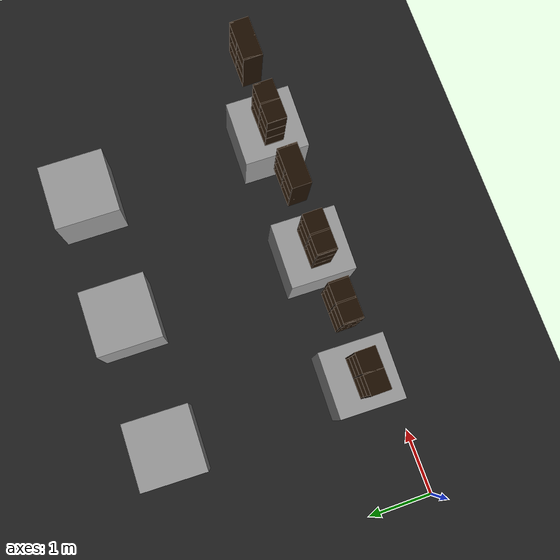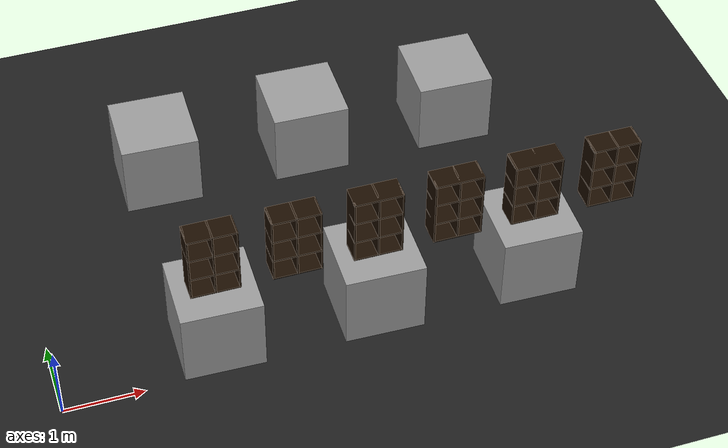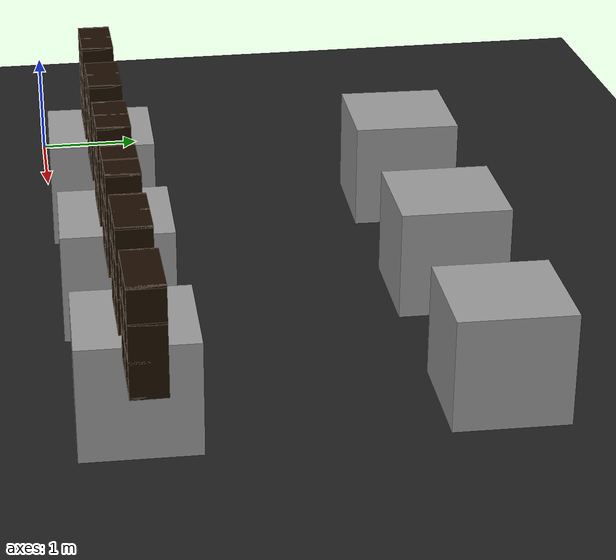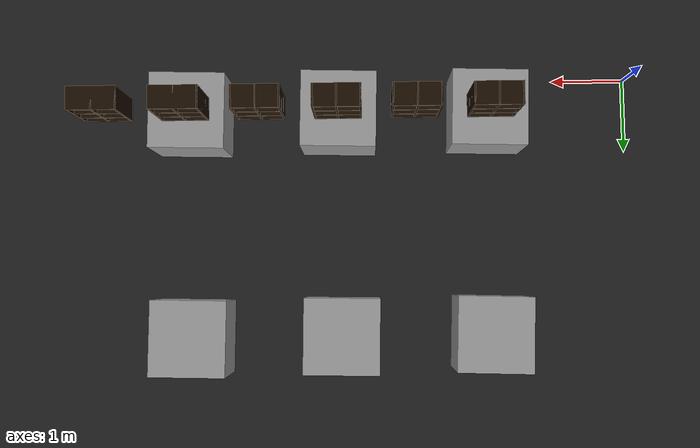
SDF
<sdf version="1.7">
 <world name="default">
  <model name="ground_plane">
   <static>1</static>
   <link name="link">
    <collision name="collision">
     <geometry><plane><normal>0 0 1</normal><size>100 100</size></plane></geometry>
     <surface><friction><ode><mu>100</mu><mu2>50</mu2></ode></friction></surface>
    </collision>
    <visual name="visual">
     <cast_shadows>0</cast_shadows>
     <geometry><plane><normal>0 0 1</normal><size>100 100</size></plane></geometry>
     <material>
      <script><uri>file://media/materials/scripts/gazebo.material</uri><name>Gazebo/BlackTransparent</name></script>
     </material>
    </visual>
   </link>
  </model>
  <model name="unit_box_13">
   <pose>1.97869 3.498 0.5 0 0 -0.03306</pose>
   <link name="link">
    <inertial>
     <mass>1</mass>
     <inertia>
      <ixx>0.166667</ixx>
      <ixy>0</ixy>
      <ixz>0</ixz>
      <iyy>0.166667</iyy>
      <iyz>0</iyz>
      <izz>0.166667</izz>
     </inertia>
    </inertial>
    <collision name="collision"><geometry><box><size>1 1 1</size></box></geometry></collision>
    <visual name="visual">
     <geometry><box><size>1 1 1</size></box></geometry>
     <material>
      <script><name>Gazebo/Grey</name><uri>file://media/materials/scripts/gazebo.material</uri></script>
     </material>
    </visual>
   </link>
  </model>
  <model name="unit_box_14">
   <pose>3.98761 3.49791 0.5 0 0 -0.021261</pose>
   <link name="link">
    <inertial>
     <mass>1</mass>
     <inertia>
      <ixx>0.166667</ixx>
      <ixy>0</ixy>
      <ixz>0</ixz>
      <iyy>0.166667</iyy>
      <iyz>0</iyz>
      <izz>0.166667</izz>
     </inertia>
    </inertial>
    <collision name="collision"><geometry><box><size>1 1 1</size></box></geometry></collision>
    <visual name="visual">
     <geometry><box><size>1 1 1</size></box></geometry>
     <material>
      <script><name>Gazebo/Grey</name><uri>file://media/materials/scripts/gazebo.material</uri></script>
     </material>
    </visual>
   </link>
  </model>
  <model name="unit_box_15">
   <pose>5.99411 3.49961 0.5 0 -0 -0.027445</pose>
   <link name="link">
    <inertial>
     <mass>1</mass>
     <inertia>
      <ixx>0.166667</ixx>
      <ixy>0</ixy>
      <ixz>0</ixz>
      <iyy>0.166667</iyy>
      <iyz>0</iyz>
      <izz>0.166667</izz>
     </inertia>
    </inertial>
    <collision name="collision"><geometry><box><size>1 1 1</size></box></geometry></collision>
    <visual name="visual">
     <geometry><box><size>1 1 1</size></box></geometry>
     <material>
      <script><name>Gazebo/Grey</name><uri>file://media/materials/scripts/gazebo.material</uri></script>
     </material>
    </visual>
   </link>
  </model>
  <model name="unit_box_19">
   <pose>1.997 0.508723 0.5 0 -0 -0.025928</pose>
   <link name="link">
    <inertial>
     <mass>1</mass>
     <inertia>
      <ixx>0.166667</ixx>
      <ixy>0</ixy>
      <ixz>0</ixz>
      <iyy>0.166667</iyy>
      <iyz>0</iyz>
      <izz>0.166667</izz>
     </inertia>
    </inertial>
    <collision name="collision"><geometry><box><size>1 1 1</size></box></geometry></collision>
    <visual name="visual">
     <geometry><box><size>1 1 1</size></box></geometry>
     <material>
      <script><name>Gazebo/Grey</name><uri>file://media/materials/scripts/gazebo.material</uri></script>
     </material>
    </visual>
   </link>
  </model>
  <model name="unit_box_20">
   <pose>3.99851 0.502361 0.5 0 0 -0.025427</pose>
   <link name="link">
    <inertial>
     <mass>1</mass>
     <inertia>
      <ixx>0.166667</ixx>
      <ixy>0</ixy>
      <ixz>0</ixz>
      <iyy>0.166667</iyy>
      <iyz>0</iyz>
      <izz>0.166667</izz>
     </inertia>
    </inertial>
    <collision name="collision"><geometry><box><size>1 1 1</size></box></geometry></collision>
    <visual name="visual">
     <geometry><box><size>1 1 1</size></box></geometry>
     <material>
      <script><name>Gazebo/Grey</name><uri>file://media/materials/scripts/gazebo.material</uri></script>
     </material>
    </visual>
   </link>
  </model>
  <model name="unit_box_21">
   <pose>5.99967 0.500062 0.5 0 0 -0.025536</pose>
   <link name="link">
    <inertial>
     <mass>1</mass>
     <inertia>
      <ixx>0.166667</ixx>
      <ixy>0</ixy>
      <ixz>0</ixz>
      <iyy>0.166667</iyy>
      <iyz>0</iyz>
      <izz>0.166667</izz>
     </inertia>
    </inertial>
    <collision name="collision"><geometry><box><size>1 1 1</size></box></geometry></collision>
    <visual name="visual">
     <geometry><box><size>1 1 1</size></box></geometry>
     <material>
      <script><name>Gazebo/Grey</name><uri>file://media/materials/scripts/gazebo.material</uri></script>
     </material>
    </visual>
   </link>
  </model>
  <model name="6_Cube_StorageE_clone_37">
   <link name="Wall_0">
    <pose>0 0 0.01 0 -0 0</pose>
    <inertial>
     <mass>1.6201</mass>
     <inertia><ixx>0.0119</ixx><iyy>0.0631</iyy><izz>0.0513</izz><ixy>0</ixy><ixz>0</ixz><iyz>0</iyz></inertia>
    </inertial>
    <collision name="Wall_0_Collision"><geometry><box><size>0.616 0.296 0.02</size></box></geometry></collision>
    <visual name="Wall_0_Visual">
     <geometry><box><size>0.616 0.296 0.02</size></box></geometry>
     <material>
      <script><uri>file://media/materials/scripts/gazebo.material</uri><name>Gazebo/Grey</name></script>
      <ambient>0.105882 0.0509804 0 1</ambient>
     </material>
    </visual>
   </link>
   <joint name="0_2" type="fixed">
    <pose>-0.308 0 0 0 -0 0</pose>
    <parent>Wall_2</parent>
    <child>Wall_0</child>
    <axis><xyz>1 0 0</xyz><limit><lower>-1e+16</lower><upper>1e+16</upper></limit></axis>
   </joint>
   <joint name="0_12" type="fixed">
    <parent>Wall_12</parent>
    <child>Wall_0</child>
    <axis><xyz>0 0 1</xyz><limit><lower>-1e+16</lower><upper>1e+16</upper></limit></axis>
   </joint>
   <joint name="0_4" type="fixed">
    <pose>0.308 0 0 0 -0 0</pose>
    <parent>Wall_4</parent>
    <child>Wall_0</child>
    <axis><xyz>1 0 0</xyz><limit><lower>-1e+16</lower><upper>1e+16</upper></limit></axis>
   </joint>
   <link name="Wall_10">
    <pose>0 0 0.61 0 -0 0</pose>
    <inertial>
     <mass>1.6201</mass>
     <inertia><ixx>0.0119</ixx><iyy>0.0631</iyy><izz>0.0513</izz><ixy>0</ixy><ixz>0</ixz><iyz>0</iyz></inertia>
    </inertial>
    <collision name="Wall_10_Collision"><geometry><box><size>0.616 0.296 0.02</size></box></geometry></collision>
    <visual name="Wall_10_Visual">
     <geometry><box><size>0.616 0.296 0.02</size></box></geometry>
     <material>
      <script><uri>file://media/materials/scripts/gazebo.material</uri><name>Gazebo/Grey</name></script>
      <ambient>0.105882 0.0509804 0 1</ambient>
     </material>
    </visual>
   </link>
   <joint name="10_2" type="fixed">
    <pose>-0.308 0 0 0 -0 0</pose>
    <parent>Wall_2</parent>
    <child>Wall_10</child>
    <axis><xyz>1 0 0</xyz><limit><lower>-1e+16</lower><upper>1e+16</upper></limit></axis>
   </joint>
   <joint name="10_12" type="fixed">
    <parent>Wall_12</parent>
    <child>Wall_10</child>
    <axis><xyz>0 0 1</xyz><limit><lower>-1e+16</lower><upper>1e+16</upper></limit></axis>
   </joint>
   <joint name="10_4" type="fixed">
    <pose>0.308 0 0 0 -0 0</pose>
    <parent>Wall_4</parent>
    <child>Wall_10</child>
    <axis><xyz>1 0 0</xyz><limit><lower>-1e+16</lower><upper>1e+16</upper></limit></axis>
   </joint>
   <link name="Wall_12">
    <pose>0 0 0.4575 0 -0 0</pose>
    <inertial>
     <mass>2.4065</mass>
     <inertia><ixx>0.0177</ixx><iyy>0.1855</iyy><izz>0.168</izz><ixy>0</ixy><ixz>0</ixz><iyz>0</iyz></inertia>
    </inertial>
    <collision name="Wall_12_Collision"><geometry><box><size>0.02 0.296 0.915</size></box></geometry></collision>
    <visual name="Wall_12_Visual">
     <geometry><box><size>0.02 0.296 0.915</size></box></geometry>
     <material>
      <script><uri>file://media/materials/scripts/gazebo.material</uri><name>Gazebo/Grey</name></script>
      <ambient>0.105882 0.0509804 0 1</ambient>
     </material>
    </visual>
   </link>
   <link name="Wall_2">
    <pose>-0.298 0 0.4575 0 -0 0</pose>
    <inertial>
     <mass>2.4065</mass>
     <inertia><ixx>0.0177</ixx><iyy>0.1855</iyy><izz>0.168</izz><ixy>0</ixy><ixz>0</ixz><iyz>0</iyz></inertia>
    </inertial>
    <collision name="Wall_2_Collision"><geometry><box><size>0.02 0.296 0.915</size></box></geometry></collision>
    <visual name="Wall_2_Visual">
     <geometry><box><size>0.02 0.296 0.915</size></box></geometry>
     <material>
      <script><uri>file://media/materials/scripts/gazebo.material</uri><name>Gazebo/Grey</name></script>
      <ambient>0.105882 0.0509804 0 1</ambient>
     </material>
    </visual>
   </link>
   <link name="Wall_4">
    <pose>0.298 0 0.4575 0 -0 0</pose>
    <inertial>
     <mass>2.4065</mass>
     <inertia><ixx>0.0177</ixx><iyy>0.1855</iyy><izz>0.168</izz><ixy>0</ixy><ixz>0</ixz><iyz>0</iyz></inertia>
    </inertial>
    <collision name="Wall_4_Collision"><geometry><box><size>0.02 0.296 0.915</size></box></geometry></collision>
    <visual name="Wall_4_Visual">
     <geometry><box><size>0.02 0.296 0.915</size></box></geometry>
     <material>
      <script><uri>file://media/materials/scripts/gazebo.material</uri><name>Gazebo/Grey</name></script>
      <ambient>0.105882 0.0509804 0 1</ambient>
     </material>
    </visual>
   </link>
   <link name="Wall_6">
    <pose>0 0 0.905 0 -0 0</pose>
    <inertial>
     <mass>1.6201</mass>
     <inertia><ixx>0.0119</ixx><iyy>0.0631</iyy><izz>0.0513</izz><ixy>0</ixy><ixz>0</ixz><iyz>0</iyz></inertia>
    </inertial>
    <collision name="Wall_6_Collision"><geometry><box><size>0.616 0.296 0.02</size></box></geometry></collision>
    <visual name="Wall_6_Visual">
     <geometry><box><size>0.616 0.296 0.02</size></box></geometry>
     <material>
      <script><uri>file://media/materials/scripts/gazebo.material</uri><name>Gazebo/Grey</name></script>
      <ambient>0.105882 0.0509804 0 1</ambient>
     </material>
    </visual>
   </link>
   <joint name="6_2" type="fixed">
    <pose>-0.308 0 0 0 -0 0</pose>
    <parent>Wall_2</parent>
    <child>Wall_6</child>
    <axis><xyz>2 0 0</xyz><limit><lower>-1e+16</lower><upper>1e+16</upper></limit></axis>
   </joint>
   <joint name="6_12" type="fixed">
    <parent>Wall_12</parent>
    <child>Wall_6</child>
    <axis><xyz>0 0 1</xyz><limit><lower>-1e+16</lower><upper>1e+16</upper></limit></axis>
   </joint>
   <joint name="6_4" type="fixed">
    <pose>0.308 0 0 0 -0 0</pose>
    <parent>Wall_4</parent>
    <child>Wall_6</child>
    <axis><xyz>1 0 0</xyz><limit><lower>-1e+16</lower><upper>1e+16</upper></limit></axis>
   </joint>
   <link name="Wall_8">
    <pose>0 0 0.305 0 -0 0</pose>
    <inertial>
     <mass>1.6201</mass>
     <inertia><ixx>0.0119</ixx><iyy>0.0631</iyy><izz>0.0513</izz><ixy>0</ixy><ixz>0</ixz><iyz>0</iyz></inertia>
    </inertial>
    <collision name="Wall_8_Collision"><geometry><box><size>0.616 0.296 0.02</size></box></geometry></collision>
    <visual name="Wall_8_Visual">
     <geometry><box><size>0.616 0.296 0.02</size></box></geometry>
     <material>
      <script><uri>file://media/materials/scripts/gazebo.material</uri><name>Gazebo/Grey</name></script>
      <ambient>0.105882 0.0509804 0 1</ambient>
     </material>
    </visual>
   </link>
   <joint name="8_2" type="fixed">
    <pose>-0.308 0 0 0 -0 0</pose>
    <parent>Wall_2</parent>
    <child>Wall_8</child>
    <axis><xyz>1 0 0</xyz><limit><lower>-1e+16</lower><upper>1e+16</upper></limit></axis>
   </joint>
   <joint name="8_12" type="fixed">
    <parent>Wall_12</parent>
    <child>Wall_8</child>
    <axis><xyz>0 0 1</xyz><limit><lower>-1e+16</lower><upper>1e+16</upper></limit></axis>
   </joint>
   <joint name="8_4" type="fixed">
    <pose>0.308 0 0 0 -0 0</pose>
    <parent>Wall_4</parent>
    <child>Wall_8</child>
    <axis><xyz>1 0 0</xyz><limit><lower>-1e+16</lower><upper>1e+16</upper></limit></axis>
   </joint>
   <static>1</static>
   <pose>2 0.5 1.01 0 -0 0</pose>
  </model>
  <model name="6_Cube_StorageE_clone_38">
   <link name="Wall_0">
    <pose>0 0 0.01 0 -0 0</pose>
    <inertial>
     <mass>1.6201</mass>
     <inertia><ixx>0.0119</ixx><iyy>0.0631</iyy><izz>0.0513</izz><ixy>0</ixy><ixz>0</ixz><iyz>0</iyz></inertia>
    </inertial>
    <collision name="Wall_0_Collision"><geometry><box><size>0.616 0.296 0.02</size></box></geometry></collision>
    <visual name="Wall_0_Visual">
     <geometry><box><size>0.616 0.296 0.02</size></box></geometry>
     <material>
      <script><uri>file://media/materials/scripts/gazebo.material</uri><name>Gazebo/Grey</name></script>
      <ambient>0.105882 0.0509804 0 1</ambient>
     </material>
    </visual>
   </link>
   <joint name="0_2" type="fixed">
    <pose>-0.308 0 0 0 -0 0</pose>
    <parent>Wall_2</parent>
    <child>Wall_0</child>
    <axis><xyz>1 0 0</xyz><limit><lower>-1e+16</lower><upper>1e+16</upper></limit></axis>
   </joint>
   <joint name="0_12" type="fixed">
    <parent>Wall_12</parent>
    <child>Wall_0</child>
    <axis><xyz>0 0 1</xyz><limit><lower>-1e+16</lower><upper>1e+16</upper></limit></axis>
   </joint>
   <joint name="0_4" type="fixed">
    <pose>0.308 0 0 0 -0 0</pose>
    <parent>Wall_4</parent>
    <child>Wall_0</child>
    <axis><xyz>1 0 0</xyz><limit><lower>-1e+16</lower><upper>1e+16</upper></limit></axis>
   </joint>
   <link name="Wall_10">
    <pose>0 0 0.61 0 -0 0</pose>
    <inertial>
     <mass>1.6201</mass>
     <inertia><ixx>0.0119</ixx><iyy>0.0631</iyy><izz>0.0513</izz><ixy>0</ixy><ixz>0</ixz><iyz>0</iyz></inertia>
    </inertial>
    <collision name="Wall_10_Collision"><geometry><box><size>0.616 0.296 0.02</size></box></geometry></collision>
    <visual name="Wall_10_Visual">
     <geometry><box><size>0.616 0.296 0.02</size></box></geometry>
     <material>
      <script><uri>file://media/materials/scripts/gazebo.material</uri><name>Gazebo/Grey</name></script>
      <ambient>0.105882 0.0509804 0 1</ambient>
     </material>
    </visual>
   </link>
   <joint name="10_2" type="fixed">
    <pose>-0.308 0 0 0 -0 0</pose>
    <parent>Wall_2</parent>
    <child>Wall_10</child>
    <axis><xyz>1 0 0</xyz><limit><lower>-1e+16</lower><upper>1e+16</upper></limit></axis>
   </joint>
   <joint name="10_12" type="fixed">
    <parent>Wall_12</parent>
    <child>Wall_10</child>
    <axis><xyz>0 0 1</xyz><limit><lower>-1e+16</lower><upper>1e+16</upper></limit></axis>
   </joint>
   <joint name="10_4" type="fixed">
    <pose>0.308 0 0 0 -0 0</pose>
    <parent>Wall_4</parent>
    <child>Wall_10</child>
    <axis><xyz>1 0 0</xyz><limit><lower>-1e+16</lower><upper>1e+16</upper></limit></axis>
   </joint>
   <link name="Wall_12">
    <pose>0 0 0.4575 0 -0 0</pose>
    <inertial>
     <mass>2.4065</mass>
     <inertia><ixx>0.0177</ixx><iyy>0.1855</iyy><izz>0.168</izz><ixy>0</ixy><ixz>0</ixz><iyz>0</iyz></inertia>
    </inertial>
    <collision name="Wall_12_Collision"><geometry><box><size>0.02 0.296 0.915</size></box></geometry></collision>
    <visual name="Wall_12_Visual">
     <geometry><box><size>0.02 0.296 0.915</size></box></geometry>
     <material>
      <script><uri>file://media/materials/scripts/gazebo.material</uri><name>Gazebo/Grey</name></script>
      <ambient>0.105882 0.0509804 0 1</ambient>
     </material>
    </visual>
   </link>
   <link name="Wall_2">
    <pose>-0.298 0 0.4575 0 -0 0</pose>
    <inertial>
     <mass>2.4065</mass>
     <inertia><ixx>0.0177</ixx><iyy>0.1855</iyy><izz>0.168</izz><ixy>0</ixy><ixz>0</ixz><iyz>0</iyz></inertia>
    </inertial>
    <collision name="Wall_2_Collision"><geometry><box><size>0.02 0.296 0.915</size></box></geometry></collision>
    <visual name="Wall_2_Visual">
     <geometry><box><size>0.02 0.296 0.915</size></box></geometry>
     <material>
      <script><uri>file://media/materials/scripts/gazebo.material</uri><name>Gazebo/Grey</name></script>
      <ambient>0.105882 0.0509804 0 1</ambient>
     </material>
    </visual>
   </link>
   <link name="Wall_4">
    <pose>0.298 0 0.4575 0 -0 0</pose>
    <inertial>
     <mass>2.4065</mass>
     <inertia><ixx>0.0177</ixx><iyy>0.1855</iyy><izz>0.168</izz><ixy>0</ixy><ixz>0</ixz><iyz>0</iyz></inertia>
    </inertial>
    <collision name="Wall_4_Collision"><geometry><box><size>0.02 0.296 0.915</size></box></geometry></collision>
    <visual name="Wall_4_Visual">
     <geometry><box><size>0.02 0.296 0.915</size></box></geometry>
     <material>
      <script><uri>file://media/materials/scripts/gazebo.material</uri><name>Gazebo/Grey</name></script>
      <ambient>0.105882 0.0509804 0 1</ambient>
     </material>
    </visual>
   </link>
   <link name="Wall_6">
    <pose>0 0 0.905 0 -0 0</pose>
    <inertial>
     <mass>1.6201</mass>
     <inertia><ixx>0.0119</ixx><iyy>0.0631</iyy><izz>0.0513</izz><ixy>0</ixy><ixz>0</ixz><iyz>0</iyz></inertia>
    </inertial>
    <collision name="Wall_6_Collision"><geometry><box><size>0.616 0.296 0.02</size></box></geometry></collision>
    <visual name="Wall_6_Visual">
     <geometry><box><size>0.616 0.296 0.02</size></box></geometry>
     <material>
      <script><uri>file://media/materials/scripts/gazebo.material</uri><name>Gazebo/Grey</name></script>
      <ambient>0.105882 0.0509804 0 1</ambient>
     </material>
    </visual>
   </link>
   <joint name="6_2" type="fixed">
    <pose>-0.308 0 0 0 -0 0</pose>
    <parent>Wall_2</parent>
    <child>Wall_6</child>
    <axis><xyz>2 0 0</xyz><limit><lower>-1e+16</lower><upper>1e+16</upper></limit></axis>
   </joint>
   <joint name="6_12" type="fixed">
    <parent>Wall_12</parent>
    <child>Wall_6</child>
    <axis><xyz>0 0 1</xyz><limit><lower>-1e+16</lower><upper>1e+16</upper></limit></axis>
   </joint>
   <joint name="6_4" type="fixed">
    <pose>0.308 0 0 0 -0 0</pose>
    <parent>Wall_4</parent>
    <child>Wall_6</child>
    <axis><xyz>1 0 0</xyz><limit><lower>-1e+16</lower><upper>1e+16</upper></limit></axis>
   </joint>
   <link name="Wall_8">
    <pose>0 0 0.305 0 -0 0</pose>
    <inertial>
     <mass>1.6201</mass>
     <inertia><ixx>0.0119</ixx><iyy>0.0631</iyy><izz>0.0513</izz><ixy>0</ixy><ixz>0</ixz><iyz>0</iyz></inertia>
    </inertial>
    <collision name="Wall_8_Collision"><geometry><box><size>0.616 0.296 0.02</size></box></geometry></collision>
    <visual name="Wall_8_Visual">
     <geometry><box><size>0.616 0.296 0.02</size></box></geometry>
     <material>
      <script><uri>file://media/materials/scripts/gazebo.material</uri><name>Gazebo/Grey</name></script>
      <ambient>0.105882 0.0509804 0 1</ambient>
     </material>
    </visual>
   </link>
   <joint name="8_2" type="fixed">
    <pose>-0.308 0 0 0 -0 0</pose>
    <parent>Wall_2</parent>
    <child>Wall_8</child>
    <axis><xyz>1 0 0</xyz><limit><lower>-1e+16</lower><upper>1e+16</upper></limit></axis>
   </joint>
   <joint name="8_12" type="fixed">
    <parent>Wall_12</parent>
    <child>Wall_8</child>
    <axis><xyz>0 0 1</xyz><limit><lower>-1e+16</lower><upper>1e+16</upper></limit></axis>
   </joint>
   <joint name="8_4" type="fixed">
    <pose>0.308 0 0 0 -0 0</pose>
    <parent>Wall_4</parent>
    <child>Wall_8</child>
    <axis><xyz>1 0 0</xyz><limit><lower>-1e+16</lower><upper>1e+16</upper></limit></axis>
   </joint>
   <static>1</static>
   <pose>3 0.5 1.01 0 -0 0</pose>
  </model>
  <model name="6_Cube_StorageE_clone_39">
   <link name="Wall_0">
    <pose>0 0 0.01 0 -0 0</pose>
    <inertial>
     <mass>1.6201</mass>
     <inertia><ixx>0.0119</ixx><iyy>0.0631</iyy><izz>0.0513</izz><ixy>0</ixy><ixz>0</ixz><iyz>0</iyz></inertia>
    </inertial>
    <collision name="Wall_0_Collision"><geometry><box><size>0.616 0.296 0.02</size></box></geometry></collision>
    <visual name="Wall_0_Visual">
     <geometry><box><size>0.616 0.296 0.02</size></box></geometry>
     <material>
      <script><uri>file://media/materials/scripts/gazebo.material</uri><name>Gazebo/Grey</name></script>
      <ambient>0.105882 0.0509804 0 1</ambient>
     </material>
    </visual>
   </link>
   <joint name="0_2" type="fixed">
    <pose>-0.308 0 0 0 -0 0</pose>
    <parent>Wall_2</parent>
    <child>Wall_0</child>
    <axis><xyz>1 0 0</xyz><limit><lower>-1e+16</lower><upper>1e+16</upper></limit></axis>
   </joint>
   <joint name="0_12" type="fixed">
    <parent>Wall_12</parent>
    <child>Wall_0</child>
    <axis><xyz>0 0 1</xyz><limit><lower>-1e+16</lower><upper>1e+16</upper></limit></axis>
   </joint>
   <joint name="0_4" type="fixed">
    <pose>0.308 0 0 0 -0 0</pose>
    <parent>Wall_4</parent>
    <child>Wall_0</child>
    <axis><xyz>1 0 0</xyz><limit><lower>-1e+16</lower><upper>1e+16</upper></limit></axis>
   </joint>
   <link name="Wall_10">
    <pose>0 0 0.61 0 -0 0</pose>
    <inertial>
     <mass>1.6201</mass>
     <inertia><ixx>0.0119</ixx><iyy>0.0631</iyy><izz>0.0513</izz><ixy>0</ixy><ixz>0</ixz><iyz>0</iyz></inertia>
    </inertial>
    <collision name="Wall_10_Collision"><geometry><box><size>0.616 0.296 0.02</size></box></geometry></collision>
    <visual name="Wall_10_Visual">
     <geometry><box><size>0.616 0.296 0.02</size></box></geometry>
     <material>
      <script><uri>file://media/materials/scripts/gazebo.material</uri><name>Gazebo/Grey</name></script>
      <ambient>0.105882 0.0509804 0 1</ambient>
     </material>
    </visual>
   </link>
   <joint name="10_2" type="fixed">
    <pose>-0.308 0 0 0 -0 0</pose>
    <parent>Wall_2</parent>
    <child>Wall_10</child>
    <axis><xyz>1 0 0</xyz><limit><lower>-1e+16</lower><upper>1e+16</upper></limit></axis>
   </joint>
   <joint name="10_12" type="fixed">
    <parent>Wall_12</parent>
    <child>Wall_10</child>
    <axis><xyz>0 0 1</xyz><limit><lower>-1e+16</lower><upper>1e+16</upper></limit></axis>
   </joint>
   <joint name="10_4" type="fixed">
    <pose>0.308 0 0 0 -0 0</pose>
    <parent>Wall_4</parent>
    <child>Wall_10</child>
    <axis><xyz>1 0 0</xyz><limit><lower>-1e+16</lower><upper>1e+16</upper></limit></axis>
   </joint>
   <link name="Wall_12">
    <pose>0 0 0.4575 0 -0 0</pose>
    <inertial>
     <mass>2.4065</mass>
     <inertia><ixx>0.0177</ixx><iyy>0.1855</iyy><izz>0.168</izz><ixy>0</ixy><ixz>0</ixz><iyz>0</iyz></inertia>
    </inertial>
    <collision name="Wall_12_Collision"><geometry><box><size>0.02 0.296 0.915</size></box></geometry></collision>
    <visual name="Wall_12_Visual">
     <geometry><box><size>0.02 0.296 0.915</size></box></geometry>
     <material>
      <script><uri>file://media/materials/scripts/gazebo.material</uri><name>Gazebo/Grey</name></script>
      <ambient>0.105882 0.0509804 0 1</ambient>
     </material>
    </visual>
   </link>
   <link name="Wall_2">
    <pose>-0.298 0 0.4575 0 -0 0</pose>
    <inertial>
     <mass>2.4065</mass>
     <inertia><ixx>0.0177</ixx><iyy>0.1855</iyy><izz>0.168</izz><ixy>0</ixy><ixz>0</ixz><iyz>0</iyz></inertia>
    </inertial>
    <collision name="Wall_2_Collision"><geometry><box><size>0.02 0.296 0.915</size></box></geometry></collision>
    <visual name="Wall_2_Visual">
     <geometry><box><size>0.02 0.296 0.915</size></box></geometry>
     <material>
      <script><uri>file://media/materials/scripts/gazebo.material</uri><name>Gazebo/Grey</name></script>
      <ambient>0.105882 0.0509804 0 1</ambient>
     </material>
    </visual>
   </link>
   <link name="Wall_4">
    <pose>0.298 0 0.4575 0 -0 0</pose>
    <inertial>
     <mass>2.4065</mass>
     <inertia><ixx>0.0177</ixx><iyy>0.1855</iyy><izz>0.168</izz><ixy>0</ixy><ixz>0</ixz><iyz>0</iyz></inertia>
    </inertial>
    <collision name="Wall_4_Collision"><geometry><box><size>0.02 0.296 0.915</size></box></geometry></collision>
    <visual name="Wall_4_Visual">
     <geometry><box><size>0.02 0.296 0.915</size></box></geometry>
     <material>
      <script><uri>file://media/materials/scripts/gazebo.material</uri><name>Gazebo/Grey</name></script>
      <ambient>0.105882 0.0509804 0 1</ambient>
     </material>
    </visual>
   </link>
   <link name="Wall_6">
    <pose>0 0 0.905 0 -0 0</pose>
    <inertial>
     <mass>1.6201</mass>
     <inertia><ixx>0.0119</ixx><iyy>0.0631</iyy><izz>0.0513</izz><ixy>0</ixy><ixz>0</ixz><iyz>0</iyz></inertia>
    </inertial>
    <collision name="Wall_6_Collision"><geometry><box><size>0.616 0.296 0.02</size></box></geometry></collision>
    <visual name="Wall_6_Visual">
     <geometry><box><size>0.616 0.296 0.02</size></box></geometry>
     <material>
      <script><uri>file://media/materials/scripts/gazebo.material</uri><name>Gazebo/Grey</name></script>
      <ambient>0.105882 0.0509804 0 1</ambient>
     </material>
    </visual>
   </link>
   <joint name="6_2" type="fixed">
    <pose>-0.308 0 0 0 -0 0</pose>
    <parent>Wall_2</parent>
    <child>Wall_6</child>
    <axis><xyz>2 0 0</xyz><limit><lower>-1e+16</lower><upper>1e+16</upper></limit></axis>
   </joint>
   <joint name="6_12" type="fixed">
    <parent>Wall_12</parent>
    <child>Wall_6</child>
    <axis><xyz>0 0 1</xyz><limit><lower>-1e+16</lower><upper>1e+16</upper></limit></axis>
   </joint>
   <joint name="6_4" type="fixed">
    <pose>0.308 0 0 0 -0 0</pose>
    <parent>Wall_4</parent>
    <child>Wall_6</child>
    <axis><xyz>1 0 0</xyz><limit><lower>-1e+16</lower><upper>1e+16</upper></limit></axis>
   </joint>
   <link name="Wall_8">
    <pose>0 0 0.305 0 -0 0</pose>
    <inertial>
     <mass>1.6201</mass>
     <inertia><ixx>0.0119</ixx><iyy>0.0631</iyy><izz>0.0513</izz><ixy>0</ixy><ixz>0</ixz><iyz>0</iyz></inertia>
    </inertial>
    <collision name="Wall_8_Collision"><geometry><box><size>0.616 0.296 0.02</size></box></geometry></collision>
    <visual name="Wall_8_Visual">
     <geometry><box><size>0.616 0.296 0.02</size></box></geometry>
     <material>
      <script><uri>file://media/materials/scripts/gazebo.material</uri><name>Gazebo/Grey</name></script>
      <ambient>0.105882 0.0509804 0 1</ambient>
     </material>
    </visual>
   </link>
   <joint name="8_2" type="fixed">
    <pose>-0.308 0 0 0 -0 0</pose>
    <parent>Wall_2</parent>
    <child>Wall_8</child>
    <axis><xyz>1 0 0</xyz><limit><lower>-1e+16</lower><upper>1e+16</upper></limit></axis>
   </joint>
   <joint name="8_12" type="fixed">
    <parent>Wall_12</parent>
    <child>Wall_8</child>
    <axis><xyz>0 0 1</xyz><limit><lower>-1e+16</lower><upper>1e+16</upper></limit></axis>
   </joint>
   <joint name="8_4" type="fixed">
    <pose>0.308 0 0 0 -0 0</pose>
    <parent>Wall_4</parent>
    <child>Wall_8</child>
    <axis><xyz>1 0 0</xyz><limit><lower>-1e+16</lower><upper>1e+16</upper></limit></axis>
   </joint>
   <static>1</static>
   <pose>4 0.5 1.01 0 -0 0</pose>
  </model>
  <model name="6_Cube_StorageE_clone_40">
   <link name="Wall_0">
    <pose>0 0 0.01 0 -0 0</pose>
    <inertial>
     <mass>1.6201</mass>
     <inertia><ixx>0.0119</ixx><iyy>0.0631</iyy><izz>0.0513</izz><ixy>0</ixy><ixz>0</ixz><iyz>0</iyz></inertia>
    </inertial>
    <collision name="Wall_0_Collision"><geometry><box><size>0.616 0.296 0.02</size></box></geometry></collision>
    <visual name="Wall_0_Visual">
     <geometry><box><size>0.616 0.296 0.02</size></box></geometry>
     <material>
      <script><uri>file://media/materials/scripts/gazebo.material</uri><name>Gazebo/Grey</name></script>
      <ambient>0.105882 0.0509804 0 1</ambient>
     </material>
    </visual>
   </link>
   <joint name="0_2" type="fixed">
    <pose>-0.308 0 0 0 -0 0</pose>
    <parent>Wall_2</parent>
    <child>Wall_0</child>
    <axis><xyz>1 0 0</xyz><limit><lower>-1e+16</lower><upper>1e+16</upper></limit></axis>
   </joint>
   <joint name="0_12" type="fixed">
    <parent>Wall_12</parent>
    <child>Wall_0</child>
    <axis><xyz>0 0 1</xyz><limit><lower>-1e+16</lower><upper>1e+16</upper></limit></axis>
   </joint>
   <joint name="0_4" type="fixed">
    <pose>0.308 0 0 0 -0 0</pose>
    <parent>Wall_4</parent>
    <child>Wall_0</child>
    <axis><xyz>1 0 0</xyz><limit><lower>-1e+16</lower><upper>1e+16</upper></limit></axis>
   </joint>
   <link name="Wall_10">
    <pose>0 0 0.61 0 -0 0</pose>
    <inertial>
     <mass>1.6201</mass>
     <inertia><ixx>0.0119</ixx><iyy>0.0631</iyy><izz>0.0513</izz><ixy>0</ixy><ixz>0</ixz><iyz>0</iyz></inertia>
    </inertial>
    <collision name="Wall_10_Collision"><geometry><box><size>0.616 0.296 0.02</size></box></geometry></collision>
    <visual name="Wall_10_Visual">
     <geometry><box><size>0.616 0.296 0.02</size></box></geometry>
     <material>
      <script><uri>file://media/materials/scripts/gazebo.material</uri><name>Gazebo/Grey</name></script>
      <ambient>0.105882 0.0509804 0 1</ambient>
     </material>
    </visual>
   </link>
   <joint name="10_2" type="fixed">
    <pose>-0.308 0 0 0 -0 0</pose>
    <parent>Wall_2</parent>
    <child>Wall_10</child>
    <axis><xyz>1 0 0</xyz><limit><lower>-1e+16</lower><upper>1e+16</upper></limit></axis>
   </joint>
   <joint name="10_12" type="fixed">
    <parent>Wall_12</parent>
    <child>Wall_10</child>
    <axis><xyz>0 0 1</xyz><limit><lower>-1e+16</lower><upper>1e+16</upper></limit></axis>
   </joint>
   <joint name="10_4" type="fixed">
    <pose>0.308 0 0 0 -0 0</pose>
    <parent>Wall_4</parent>
    <child>Wall_10</child>
    <axis><xyz>1 0 0</xyz><limit><lower>-1e+16</lower><upper>1e+16</upper></limit></axis>
   </joint>
   <link name="Wall_12">
    <pose>0 0 0.4575 0 -0 0</pose>
    <inertial>
     <mass>2.4065</mass>
     <inertia><ixx>0.0177</ixx><iyy>0.1855</iyy><izz>0.168</izz><ixy>0</ixy><ixz>0</ixz><iyz>0</iyz></inertia>
    </inertial>
    <collision name="Wall_12_Collision"><geometry><box><size>0.02 0.296 0.915</size></box></geometry></collision>
    <visual name="Wall_12_Visual">
     <geometry><box><size>0.02 0.296 0.915</size></box></geometry>
     <material>
      <script><uri>file://media/materials/scripts/gazebo.material</uri><name>Gazebo/Grey</name></script>
      <ambient>0.105882 0.0509804 0 1</ambient>
     </material>
    </visual>
   </link>
   <link name="Wall_2">
    <pose>-0.298 0 0.4575 0 -0 0</pose>
    <inertial>
     <mass>2.4065</mass>
     <inertia><ixx>0.0177</ixx><iyy>0.1855</iyy><izz>0.168</izz><ixy>0</ixy><ixz>0</ixz><iyz>0</iyz></inertia>
    </inertial>
    <collision name="Wall_2_Collision"><geometry><box><size>0.02 0.296 0.915</size></box></geometry></collision>
    <visual name="Wall_2_Visual">
     <geometry><box><size>0.02 0.296 0.915</size></box></geometry>
     <material>
      <script><uri>file://media/materials/scripts/gazebo.material</uri><name>Gazebo/Grey</name></script>
      <ambient>0.105882 0.0509804 0 1</ambient>
     </material>
    </visual>
   </link>
   <link name="Wall_4">
    <pose>0.298 0 0.4575 0 -0 0</pose>
    <inertial>
     <mass>2.4065</mass>
     <inertia><ixx>0.0177</ixx><iyy>0.1855</iyy><izz>0.168</izz><ixy>0</ixy><ixz>0</ixz><iyz>0</iyz></inertia>
    </inertial>
    <collision name="Wall_4_Collision"><geometry><box><size>0.02 0.296 0.915</size></box></geometry></collision>
    <visual name="Wall_4_Visual">
     <geometry><box><size>0.02 0.296 0.915</size></box></geometry>
     <material>
      <script><uri>file://media/materials/scripts/gazebo.material</uri><name>Gazebo/Grey</name></script>
      <ambient>0.105882 0.0509804 0 1</ambient>
     </material>
    </visual>
   </link>
   <link name="Wall_6">
    <pose>0 0 0.905 0 -0 0</pose>
    <inertial>
     <mass>1.6201</mass>
     <inertia><ixx>0.0119</ixx><iyy>0.0631</iyy><izz>0.0513</izz><ixy>0</ixy><ixz>0</ixz><iyz>0</iyz></inertia>
    </inertial>
    <collision name="Wall_6_Collision"><geometry><box><size>0.616 0.296 0.02</size></box></geometry></collision>
    <visual name="Wall_6_Visual">
     <geometry><box><size>0.616 0.296 0.02</size></box></geometry>
     <material>
      <script><uri>file://media/materials/scripts/gazebo.material</uri><name>Gazebo/Grey</name></script>
      <ambient>0.105882 0.0509804 0 1</ambient>
     </material>
    </visual>
   </link>
   <joint name="6_2" type="fixed">
    <pose>-0.308 0 0 0 -0 0</pose>
    <parent>Wall_2</parent>
    <child>Wall_6</child>
    <axis><xyz>2 0 0</xyz><limit><lower>-1e+16</lower><upper>1e+16</upper></limit></axis>
   </joint>
   <joint name="6_12" type="fixed">
    <parent>Wall_12</parent>
    <child>Wall_6</child>
    <axis><xyz>0 0 1</xyz><limit><lower>-1e+16</lower><upper>1e+16</upper></limit></axis>
   </joint>
   <joint name="6_4" type="fixed">
    <pose>0.308 0 0 0 -0 0</pose>
    <parent>Wall_4</parent>
    <child>Wall_6</child>
    <axis><xyz>1 0 0</xyz><limit><lower>-1e+16</lower><upper>1e+16</upper></limit></axis>
   </joint>
   <link name="Wall_8">
    <pose>0 0 0.305 0 -0 0</pose>
    <inertial>
     <mass>1.6201</mass>
     <inertia><ixx>0.0119</ixx><iyy>0.0631</iyy><izz>0.0513</izz><ixy>0</ixy><ixz>0</ixz><iyz>0</iyz></inertia>
    </inertial>
    <collision name="Wall_8_Collision"><geometry><box><size>0.616 0.296 0.02</size></box></geometry></collision>
    <visual name="Wall_8_Visual">
     <geometry><box><size>0.616 0.296 0.02</size></box></geometry>
     <material>
      <script><uri>file://media/materials/scripts/gazebo.material</uri><name>Gazebo/Grey</name></script>
      <ambient>0.105882 0.0509804 0 1</ambient>
     </material>
    </visual>
   </link>
   <joint name="8_2" type="fixed">
    <pose>-0.308 0 0 0 -0 0</pose>
    <parent>Wall_2</parent>
    <child>Wall_8</child>
    <axis><xyz>1 0 0</xyz><limit><lower>-1e+16</lower><upper>1e+16</upper></limit></axis>
   </joint>
   <joint name="8_12" type="fixed">
    <parent>Wall_12</parent>
    <child>Wall_8</child>
    <axis><xyz>0 0 1</xyz><limit><lower>-1e+16</lower><upper>1e+16</upper></limit></axis>
   </joint>
   <joint name="8_4" type="fixed">
    <pose>0.308 0 0 0 -0 0</pose>
    <parent>Wall_4</parent>
    <child>Wall_8</child>
    <axis><xyz>1 0 0</xyz><limit><lower>-1e+16</lower><upper>1e+16</upper></limit></axis>
   </joint>
   <static>1</static>
   <pose>5 0.5 1.01 0 -0 0</pose>
  </model>
  <model name="6_Cube_StorageE_clone_41">
   <link name="Wall_0">
    <pose>0 0 0.01 0 -0 0</pose>
    <inertial>
     <mass>1.6201</mass>
     <inertia><ixx>0.0119</ixx><iyy>0.0631</iyy><izz>0.0513</izz><ixy>0</ixy><ixz>0</ixz><iyz>0</iyz></inertia>
    </inertial>
    <collision name="Wall_0_Collision"><geometry><box><size>0.616 0.296 0.02</size></box></geometry></collision>
    <visual name="Wall_0_Visual">
     <geometry><box><size>0.616 0.296 0.02</size></box></geometry>
     <material>
      <script><uri>file://media/materials/scripts/gazebo.material</uri><name>Gazebo/Grey</name></script>
      <ambient>0.105882 0.0509804 0 1</ambient>
     </material>
    </visual>
   </link>
   <joint name="0_2" type="fixed">
    <pose>-0.308 0 0 0 -0 0</pose>
    <parent>Wall_2</parent>
    <child>Wall_0</child>
    <axis><xyz>1 0 0</xyz><limit><lower>-1e+16</lower><upper>1e+16</upper></limit></axis>
   </joint>
   <joint name="0_12" type="fixed">
    <parent>Wall_12</parent>
    <child>Wall_0</child>
    <axis><xyz>0 0 1</xyz><limit><lower>-1e+16</lower><upper>1e+16</upper></limit></axis>
   </joint>
   <joint name="0_4" type="fixed">
    <pose>0.308 0 0 0 -0 0</pose>
    <parent>Wall_4</parent>
    <child>Wall_0</child>
    <axis><xyz>1 0 0</xyz><limit><lower>-1e+16</lower><upper>1e+16</upper></limit></axis>
   </joint>
   <link name="Wall_10">
    <pose>0 0 0.61 0 -0 0</pose>
    <inertial>
     <mass>1.6201</mass>
     <inertia><ixx>0.0119</ixx><iyy>0.0631</iyy><izz>0.0513</izz><ixy>0</ixy><ixz>0</ixz><iyz>0</iyz></inertia>
    </inertial>
    <collision name="Wall_10_Collision"><geometry><box><size>0.616 0.296 0.02</size></box></geometry></collision>
    <visual name="Wall_10_Visual">
     <geometry><box><size>0.616 0.296 0.02</size></box></geometry>
     <material>
      <script><uri>file://media/materials/scripts/gazebo.material</uri><name>Gazebo/Grey</name></script>
      <ambient>0.105882 0.0509804 0 1</ambient>
     </material>
    </visual>
   </link>
   <joint name="10_2" type="fixed">
    <pose>-0.308 0 0 0 -0 0</pose>
    <parent>Wall_2</parent>
    <child>Wall_10</child>
    <axis><xyz>1 0 0</xyz><limit><lower>-1e+16</lower><upper>1e+16</upper></limit></axis>
   </joint>
   <joint name="10_12" type="fixed">
    <parent>Wall_12</parent>
    <child>Wall_10</child>
    <axis><xyz>0 0 1</xyz><limit><lower>-1e+16</lower><upper>1e+16</upper></limit></axis>
   </joint>
   <joint name="10_4" type="fixed">
    <pose>0.308 0 0 0 -0 0</pose>
    <parent>Wall_4</parent>
    <child>Wall_10</child>
    <axis><xyz>1 0 0</xyz><limit><lower>-1e+16</lower><upper>1e+16</upper></limit></axis>
   </joint>
   <link name="Wall_12">
    <pose>0 0 0.4575 0 -0 0</pose>
    <inertial>
     <mass>2.4065</mass>
     <inertia><ixx>0.0177</ixx><iyy>0.1855</iyy><izz>0.168</izz><ixy>0</ixy><ixz>0</ixz><iyz>0</iyz></inertia>
    </inertial>
    <collision name="Wall_12_Collision"><geometry><box><size>0.02 0.296 0.915</size></box></geometry></collision>
    <visual name="Wall_12_Visual">
     <geometry><box><size>0.02 0.296 0.915</size></box></geometry>
     <material>
      <script><uri>file://media/materials/scripts/gazebo.material</uri><name>Gazebo/Grey</name></script>
      <ambient>0.105882 0.0509804 0 1</ambient>
     </material>
    </visual>
   </link>
   <link name="Wall_2">
    <pose>-0.298 0 0.4575 0 -0 0</pose>
    <inertial>
     <mass>2.4065</mass>
     <inertia><ixx>0.0177</ixx><iyy>0.1855</iyy><izz>0.168</izz><ixy>0</ixy><ixz>0</ixz><iyz>0</iyz></inertia>
    </inertial>
    <collision name="Wall_2_Collision"><geometry><box><size>0.02 0.296 0.915</size></box></geometry></collision>
    <visual name="Wall_2_Visual">
     <geometry><box><size>0.02 0.296 0.915</size></box></geometry>
     <material>
      <script><uri>file://media/materials/scripts/gazebo.material</uri><name>Gazebo/Grey</name></script>
      <ambient>0.105882 0.0509804 0 1</ambient>
     </material>
    </visual>
   </link>
   <link name="Wall_4">
    <pose>0.298 0 0.4575 0 -0 0</pose>
    <inertial>
     <mass>2.4065</mass>
     <inertia><ixx>0.0177</ixx><iyy>0.1855</iyy><izz>0.168</izz><ixy>0</ixy><ixz>0</ixz><iyz>0</iyz></inertia>
    </inertial>
    <collision name="Wall_4_Collision"><geometry><box><size>0.02 0.296 0.915</size></box></geometry></collision>
    <visual name="Wall_4_Visual">
     <geometry><box><size>0.02 0.296 0.915</size></box></geometry>
     <material>
      <script><uri>file://media/materials/scripts/gazebo.material</uri><name>Gazebo/Grey</name></script>
      <ambient>0.105882 0.0509804 0 1</ambient>
     </material>
    </visual>
   </link>
   <link name="Wall_6">
    <pose>0 0 0.905 0 -0 0</pose>
    <inertial>
     <mass>1.6201</mass>
     <inertia><ixx>0.0119</ixx><iyy>0.0631</iyy><izz>0.0513</izz><ixy>0</ixy><ixz>0</ixz><iyz>0</iyz></inertia>
    </inertial>
    <collision name="Wall_6_Collision"><geometry><box><size>0.616 0.296 0.02</size></box></geometry></collision>
    <visual name="Wall_6_Visual">
     <geometry><box><size>0.616 0.296 0.02</size></box></geometry>
     <material>
      <script><uri>file://media/materials/scripts/gazebo.material</uri><name>Gazebo/Grey</name></script>
      <ambient>0.105882 0.0509804 0 1</ambient>
     </material>
    </visual>
   </link>
   <joint name="6_2" type="fixed">
    <pose>-0.308 0 0 0 -0 0</pose>
    <parent>Wall_2</parent>
    <child>Wall_6</child>
    <axis><xyz>2 0 0</xyz><limit><lower>-1e+16</lower><upper>1e+16</upper></limit></axis>
   </joint>
   <joint name="6_12" type="fixed">
    <parent>Wall_12</parent>
    <child>Wall_6</child>
    <axis><xyz>0 0 1</xyz><limit><lower>-1e+16</lower><upper>1e+16</upper></limit></axis>
   </joint>
   <joint name="6_4" type="fixed">
    <pose>0.308 0 0 0 -0 0</pose>
    <parent>Wall_4</parent>
    <child>Wall_6</child>
    <axis><xyz>1 0 0</xyz><limit><lower>-1e+16</lower><upper>1e+16</upper></limit></axis>
   </joint>
   <link name="Wall_8">
    <pose>0 0 0.305 0 -0 0</pose>
    <inertial>
     <mass>1.6201</mass>
     <inertia><ixx>0.0119</ixx><iyy>0.0631</iyy><izz>0.0513</izz><ixy>0</ixy><ixz>0</ixz><iyz>0</iyz></inertia>
    </inertial>
    <collision name="Wall_8_Collision"><geometry><box><size>0.616 0.296 0.02</size></box></geometry></collision>
    <visual name="Wall_8_Visual">
     <geometry><box><size>0.616 0.296 0.02</size></box></geometry>
     <material>
      <script><uri>file://media/materials/scripts/gazebo.material</uri><name>Gazebo/Grey</name></script>
      <ambient>0.105882 0.0509804 0 1</ambient>
     </material>
    </visual>
   </link>
   <joint name="8_2" type="fixed">
    <pose>-0.308 0 0 0 -0 0</pose>
    <parent>Wall_2</parent>
    <child>Wall_8</child>
    <axis><xyz>1 0 0</xyz><limit><lower>-1e+16</lower><upper>1e+16</upper></limit></axis>
   </joint>
   <joint name="8_12" type="fixed">
    <parent>Wall_12</parent>
    <child>Wall_8</child>
    <axis><xyz>0 0 1</xyz><limit><lower>-1e+16</lower><upper>1e+16</upper></limit></axis>
   </joint>
   <joint name="8_4" type="fixed">
    <pose>0.308 0 0 0 -0 0</pose>
    <parent>Wall_4</parent>
    <child>Wall_8</child>
    <axis><xyz>1 0 0</xyz><limit><lower>-1e+16</lower><upper>1e+16</upper></limit></axis>
   </joint>
   <static>1</static>
   <pose>6 0.5 1.01 0 -0 0</pose>
  </model>
  <model name="6_Cube_StorageE_clone_42">
   <link name="Wall_0">
    <pose>0 0 0.01 0 -0 0</pose>
    <inertial>
     <mass>1.6201</mass>
     <inertia><ixx>0.0119</ixx><iyy>0.0631</iyy><izz>0.0513</izz><ixy>0</ixy><ixz>0</ixz><iyz>0</iyz></inertia>
    </inertial>
    <collision name="Wall_0_Collision"><geometry><box><size>0.616 0.296 0.02</size></box></geometry></collision>
    <visual name="Wall_0_Visual">
     <geometry><box><size>0.616 0.296 0.02</size></box></geometry>
     <material>
      <script><uri>file://media/materials/scripts/gazebo.material</uri><name>Gazebo/Grey</name></script>
      <ambient>0.105882 0.0509804 0 1</ambient>
     </material>
    </visual>
   </link>
   <joint name="0_2" type="fixed">
    <pose>-0.308 0 0 0 -0 0</pose>
    <parent>Wall_2</parent>
    <child>Wall_0</child>
    <axis><xyz>1 0 0</xyz><limit><lower>-1e+16</lower><upper>1e+16</upper></limit></axis>
   </joint>
   <joint name="0_12" type="fixed">
    <parent>Wall_12</parent>
    <child>Wall_0</child>
    <axis><xyz>0 0 1</xyz><limit><lower>-1e+16</lower><upper>1e+16</upper></limit></axis>
   </joint>
   <joint name="0_4" type="fixed">
    <pose>0.308 0 0 0 -0 0</pose>
    <parent>Wall_4</parent>
    <child>Wall_0</child>
    <axis><xyz>1 0 0</xyz><limit><lower>-1e+16</lower><upper>1e+16</upper></limit></axis>
   </joint>
   <link name="Wall_10">
    <pose>0 0 0.61 0 -0 0</pose>
    <inertial>
     <mass>1.6201</mass>
     <inertia><ixx>0.0119</ixx><iyy>0.0631</iyy><izz>0.0513</izz><ixy>0</ixy><ixz>0</ixz><iyz>0</iyz></inertia>
    </inertial>
    <collision name="Wall_10_Collision"><geometry><box><size>0.616 0.296 0.02</size></box></geometry></collision>
    <visual name="Wall_10_Visual">
     <geometry><box><size>0.616 0.296 0.02</size></box></geometry>
     <material>
      <script><uri>file://media/materials/scripts/gazebo.material</uri><name>Gazebo/Grey</name></script>
      <ambient>0.105882 0.0509804 0 1</ambient>
     </material>
    </visual>
   </link>
   <joint name="10_2" type="fixed">
    <pose>-0.308 0 0 0 -0 0</pose>
    <parent>Wall_2</parent>
    <child>Wall_10</child>
    <axis><xyz>1 0 0</xyz><limit><lower>-1e+16</lower><upper>1e+16</upper></limit></axis>
   </joint>
   <joint name="10_12" type="fixed">
    <parent>Wall_12</parent>
    <child>Wall_10</child>
    <axis><xyz>0 0 1</xyz><limit><lower>-1e+16</lower><upper>1e+16</upper></limit></axis>
   </joint>
   <joint name="10_4" type="fixed">
    <pose>0.308 0 0 0 -0 0</pose>
    <parent>Wall_4</parent>
    <child>Wall_10</child>
    <axis><xyz>1 0 0</xyz><limit><lower>-1e+16</lower><upper>1e+16</upper></limit></axis>
   </joint>
   <link name="Wall_12">
    <pose>0 0 0.4575 0 -0 0</pose>
    <inertial>
     <mass>2.4065</mass>
     <inertia><ixx>0.0177</ixx><iyy>0.1855</iyy><izz>0.168</izz><ixy>0</ixy><ixz>0</ixz><iyz>0</iyz></inertia>
    </inertial>
    <collision name="Wall_12_Collision"><geometry><box><size>0.02 0.296 0.915</size></box></geometry></collision>
    <visual name="Wall_12_Visual">
     <geometry><box><size>0.02 0.296 0.915</size></box></geometry>
     <material>
      <script><uri>file://media/materials/scripts/gazebo.material</uri><name>Gazebo/Grey</name></script>
      <ambient>0.105882 0.0509804 0 1</ambient>
     </material>
    </visual>
   </link>
   <link name="Wall_2">
    <pose>-0.298 0 0.4575 0 -0 0</pose>
    <inertial>
     <mass>2.4065</mass>
     <inertia><ixx>0.0177</ixx><iyy>0.1855</iyy><izz>0.168</izz><ixy>0</ixy><ixz>0</ixz><iyz>0</iyz></inertia>
    </inertial>
    <collision name="Wall_2_Collision"><geometry><box><size>0.02 0.296 0.915</size></box></geometry></collision>
    <visual name="Wall_2_Visual">
     <geometry><box><size>0.02 0.296 0.915</size></box></geometry>
     <material>
      <script><uri>file://media/materials/scripts/gazebo.material</uri><name>Gazebo/Grey</name></script>
      <ambient>0.105882 0.0509804 0 1</ambient>
     </material>
    </visual>
   </link>
   <link name="Wall_4">
    <pose>0.298 0 0.4575 0 -0 0</pose>
    <inertial>
     <mass>2.4065</mass>
     <inertia><ixx>0.0177</ixx><iyy>0.1855</iyy><izz>0.168</izz><ixy>0</ixy><ixz>0</ixz><iyz>0</iyz></inertia>
    </inertial>
    <collision name="Wall_4_Collision"><geometry><box><size>0.02 0.296 0.915</size></box></geometry></collision>
    <visual name="Wall_4_Visual">
     <geometry><box><size>0.02 0.296 0.915</size></box></geometry>
     <material>
      <script><uri>file://media/materials/scripts/gazebo.material</uri><name>Gazebo/Grey</name></script>
      <ambient>0.105882 0.0509804 0 1</ambient>
     </material>
    </visual>
   </link>
   <link name="Wall_6">
    <pose>0 0 0.905 0 -0 0</pose>
    <inertial>
     <mass>1.6201</mass>
     <inertia><ixx>0.0119</ixx><iyy>0.0631</iyy><izz>0.0513</izz><ixy>0</ixy><ixz>0</ixz><iyz>0</iyz></inertia>
    </inertial>
    <collision name="Wall_6_Collision"><geometry><box><size>0.616 0.296 0.02</size></box></geometry></collision>
    <visual name="Wall_6_Visual">
     <geometry><box><size>0.616 0.296 0.02</size></box></geometry>
     <material>
      <script><uri>file://media/materials/scripts/gazebo.material</uri><name>Gazebo/Grey</name></script>
      <ambient>0.105882 0.0509804 0 1</ambient>
     </material>
    </visual>
   </link>
   <joint name="6_2" type="fixed">
    <pose>-0.308 0 0 0 -0 0</pose>
    <parent>Wall_2</parent>
    <child>Wall_6</child>
    <axis><xyz>2 0 0</xyz><limit><lower>-1e+16</lower><upper>1e+16</upper></limit></axis>
   </joint>
   <joint name="6_12" type="fixed">
    <parent>Wall_12</parent>
    <child>Wall_6</child>
    <axis><xyz>0 0 1</xyz><limit><lower>-1e+16</lower><upper>1e+16</upper></limit></axis>
   </joint>
   <joint name="6_4" type="fixed">
    <pose>0.308 0 0 0 -0 0</pose>
    <parent>Wall_4</parent>
    <child>Wall_6</child>
    <axis><xyz>1 0 0</xyz><limit><lower>-1e+16</lower><upper>1e+16</upper></limit></axis>
   </joint>
   <link name="Wall_8">
    <pose>0 0 0.305 0 -0 0</pose>
    <inertial>
     <mass>1.6201</mass>
     <inertia><ixx>0.0119</ixx><iyy>0.0631</iyy><izz>0.0513</izz><ixy>0</ixy><ixz>0</ixz><iyz>0</iyz></inertia>
    </inertial>
    <collision name="Wall_8_Collision"><geometry><box><size>0.616 0.296 0.02</size></box></geometry></collision>
    <visual name="Wall_8_Visual">
     <geometry><box><size>0.616 0.296 0.02</size></box></geometry>
     <material>
      <script><uri>file://media/materials/scripts/gazebo.material</uri><name>Gazebo/Grey</name></script>
      <ambient>0.105882 0.0509804 0 1</ambient>
     </material>
    </visual>
   </link>
   <joint name="8_2" type="fixed">
    <pose>-0.308 0 0 0 -0 0</pose>
    <parent>Wall_2</parent>
    <child>Wall_8</child>
    <axis><xyz>1 0 0</xyz><limit><lower>-1e+16</lower><upper>1e+16</upper></limit></axis>
   </joint>
   <joint name="8_12" type="fixed">
    <parent>Wall_12</parent>
    <child>Wall_8</child>
    <axis><xyz>0 0 1</xyz><limit><lower>-1e+16</lower><upper>1e+16</upper></limit></axis>
   </joint>
   <joint name="8_4" type="fixed">
    <pose>0.308 0 0 0 -0 0</pose>
    <parent>Wall_4</parent>
    <child>Wall_8</child>
    <axis><xyz>1 0 0</xyz><limit><lower>-1e+16</lower><upper>1e+16</upper></limit></axis>
   </joint>
   <static>1</static>
   <pose>7 0.5 1.01 0 -0 0</pose>
  </model>
 </world>
</sdf>
